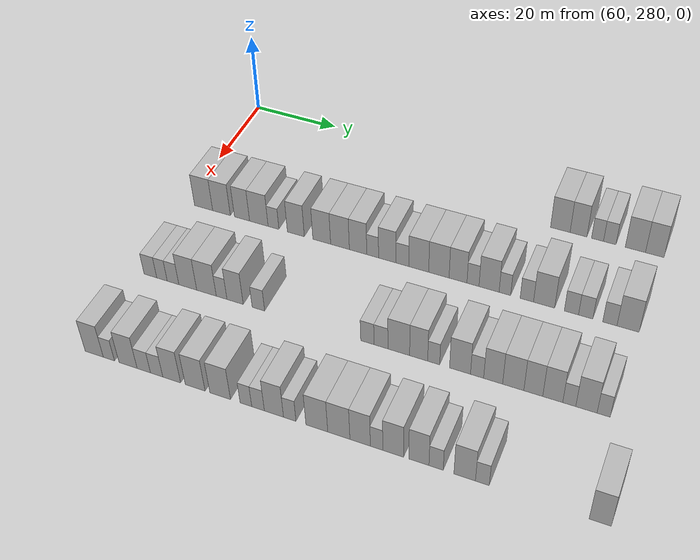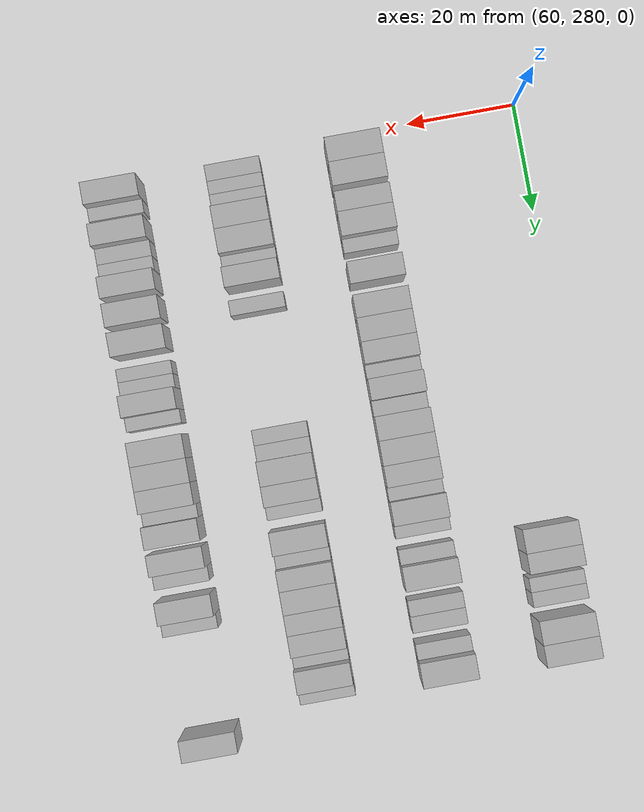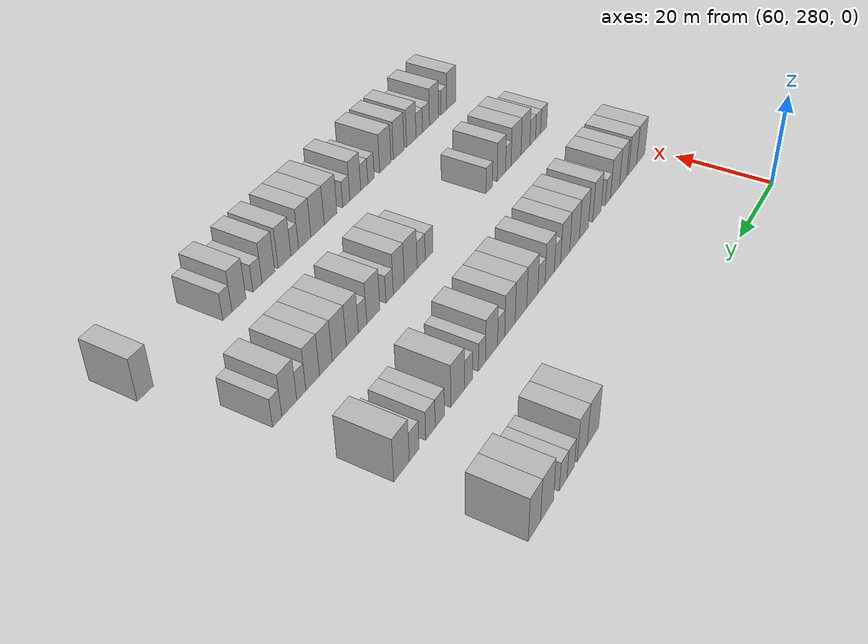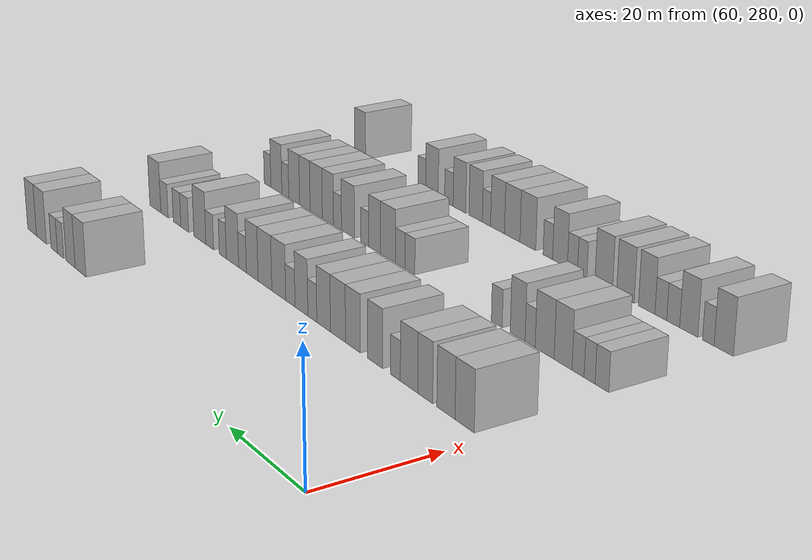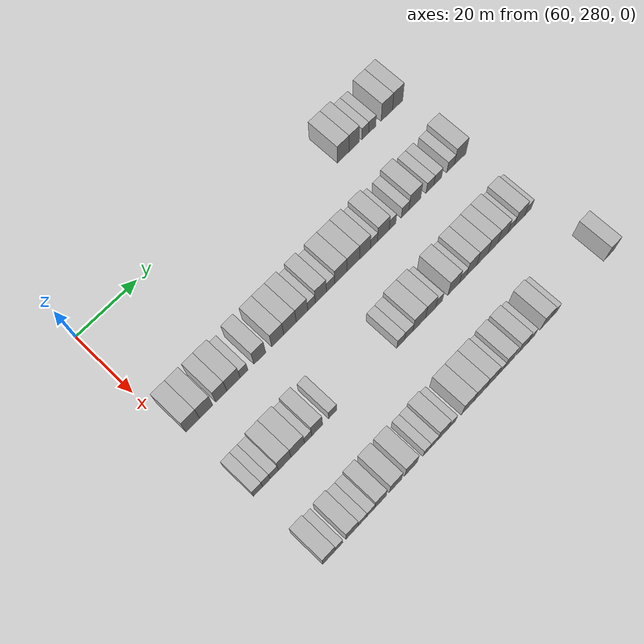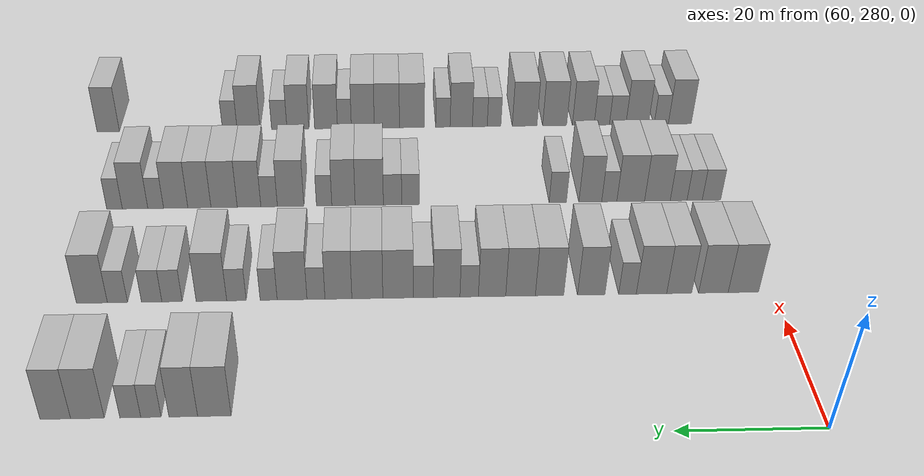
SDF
<sdf version="1.6">
 <world name="default">
  <model name="building_573">
   <static>1</static>
   <pose>69.0000 358.8042 0 0.000000 0.000000 0.000000</pose>
   <link name="link">
    <pose>0 0 4.50 0 0 0</pose>
    <collision name="collision"><geometry><box><size>10.0000 4.3174 9.0000</size></box></geometry></collision>
    <visual name="visual">
     <cast_shadows>0</cast_shadows>
     <geometry><box><size>10.0000 4.3174 9.0000</size></box></geometry>
     <material>
      <script>
       <uri>model://HANNAS_wall/materials/scripts</uri>
       <uri>model://HANNAS_wall/materials/textures</uri>
       <name>vrc/HANNAS_wall</name>
      </script>
     </material>
    </visual>
   </link>
  </model>
  <model name="building_574">
   <static>1</static>
   <pose>69.0000 362.8126 0 0.000000 0.000000 0.000000</pose>
   <link name="link">
    <pose>0 0 4.50 0 0 0</pose>
    <collision name="collision"><geometry><box><size>10.0000 3.6994 9.0000</size></box></geometry></collision>
    <visual name="visual">
     <cast_shadows>0</cast_shadows>
     <geometry><box><size>10.0000 3.6994 9.0000</size></box></geometry>
     <material>
      <script>
       <uri>model://HANNAS_wall/materials/scripts</uri>
       <uri>model://HANNAS_wall/materials/textures</uri>
       <name>vrc/HANNAS_wall</name>
      </script>
     </material>
    </visual>
   </link>
  </model>
  <model name="building_575">
   <static>1</static>
   <pose>69.0000 366.9683 0 0.000000 0.000000 0.000000</pose>
   <link name="link">
    <pose>0 0 3.00 0 0 0</pose>
    <collision name="collision"><geometry><box><size>10.0000 2.6120 6.0000</size></box></geometry></collision>
    <visual name="visual">
     <cast_shadows>0</cast_shadows>
     <geometry><box><size>10.0000 2.6120 6.0000</size></box></geometry>
     <material>
      <script>
       <uri>model://HANNAS_wall/materials/scripts</uri>
       <uri>model://HANNAS_wall/materials/textures</uri>
       <name>vrc/HANNAS_wall</name>
      </script>
     </material>
    </visual>
   </link>
  </model>
  <model name="building_576">
   <static>1</static>
   <pose>69.0000 369.6193 0 0.000000 0.000000 0.000000</pose>
   <link name="link">
    <pose>0 0 3.00 0 0 0</pose>
    <collision name="collision"><geometry><box><size>10.0000 2.6900 6.0000</size></box></geometry></collision>
    <visual name="visual">
     <cast_shadows>0</cast_shadows>
     <geometry><box><size>10.0000 2.6900 6.0000</size></box></geometry>
     <material>
      <script>
       <uri>model://HANNAS_wall/materials/scripts</uri>
       <uri>model://HANNAS_wall/materials/textures</uri>
       <name>vrc/HANNAS_wall</name>
      </script>
     </material>
    </visual>
   </link>
  </model>
  <model name="building_577">
   <static>1</static>
   <pose>69.0000 375.1210 0 0.000000 0.000000 0.000000</pose>
   <link name="link">
    <pose>0 0 4.50 0 0 0</pose>
    <collision name="collision"><geometry><box><size>10.0000 4.3135 9.0000</size></box></geometry></collision>
    <visual name="visual">
     <cast_shadows>0</cast_shadows>
     <geometry><box><size>10.0000 4.3135 9.0000</size></box></geometry>
     <material>
      <script>
       <uri>model://HANNAS_wall/materials/scripts</uri>
       <uri>model://HANNAS_wall/materials/textures</uri>
       <name>vrc/HANNAS_wall</name>
      </script>
     </material>
    </visual>
   </link>
  </model>
  <model name="building_578">
   <static>1</static>
   <pose>69.0000 379.2402 0 0.000000 0.000000 0.000000</pose>
   <link name="link">
    <pose>0 0 4.50 0 0 0</pose>
    <collision name="collision"><geometry><box><size>10.0000 3.9248 9.0000</size></box></geometry></collision>
    <visual name="visual">
     <cast_shadows>0</cast_shadows>
     <geometry><box><size>10.0000 3.9248 9.0000</size></box></geometry>
     <material>
      <script>
       <uri>model://HANNAS_wall/materials/scripts</uri>
       <uri>model://HANNAS_wall/materials/textures</uri>
       <name>vrc/HANNAS_wall</name>
      </script>
     </material>
    </visual>
   </link>
  </model>
  <model name="building_741">
   <static>1</static>
   <pose>91.0000 284.4511 0 0.000000 0.000000 0.000000</pose>
   <link name="link">
    <pose>0 0 4.50 0 0 0</pose>
    <collision name="collision"><geometry><box><size>10.0000 4.4527 9.0000</size></box></geometry></collision>
    <visual name="visual">
     <cast_shadows>0</cast_shadows>
     <geometry><box><size>10.0000 4.4527 9.0000</size></box></geometry>
     <material>
      <script>
       <uri>model://HANNAS_wall/materials/scripts</uri>
       <uri>model://HANNAS_wall/materials/textures</uri>
       <name>vrc/HANNAS_wall</name>
      </script>
     </material>
    </visual>
   </link>
  </model>
  <model name="building_742">
   <static>1</static>
   <pose>91.0000 288.8378 0 0.000000 0.000000 0.000000</pose>
   <link name="link">
    <pose>0 0 4.50 0 0 0</pose>
    <collision name="collision"><geometry><box><size>10.0000 4.3207 9.0000</size></box></geometry></collision>
    <visual name="visual">
     <cast_shadows>0</cast_shadows>
     <geometry><box><size>10.0000 4.3207 9.0000</size></box></geometry>
     <material>
      <script>
       <uri>model://HANNAS_wall/materials/scripts</uri>
       <uri>model://HANNAS_wall/materials/textures</uri>
       <name>vrc/HANNAS_wall</name>
      </script>
     </material>
    </visual>
   </link>
  </model>
  <model name="building_743">
   <static>1</static>
   <pose>91.0000 293.8256 0 0.000000 0.000000 0.000000</pose>
   <link name="link">
    <pose>0 0 4.50 0 0 0</pose>
    <collision name="collision"><geometry><box><size>10.0000 3.6549 9.0000</size></box></geometry></collision>
    <visual name="visual">
     <cast_shadows>0</cast_shadows>
     <geometry><box><size>10.0000 3.6549 9.0000</size></box></geometry>
     <material>
      <script>
       <uri>model://HANNAS_wall/materials/scripts</uri>
       <uri>model://HANNAS_wall/materials/textures</uri>
       <name>vrc/HANNAS_wall</name>
      </script>
     </material>
    </visual>
   </link>
  </model>
  <model name="building_744">
   <static>1</static>
   <pose>91.0000 297.8695 0 0.000000 0.000000 0.000000</pose>
   <link name="link">
    <pose>0 0 4.50 0 0 0</pose>
    <collision name="collision"><geometry><box><size>10.0000 4.4329 9.0000</size></box></geometry></collision>
    <visual name="visual">
     <cast_shadows>0</cast_shadows>
     <geometry><box><size>10.0000 4.4329 9.0000</size></box></geometry>
     <material>
      <script>
       <uri>model://HANNAS_wall/materials/scripts</uri>
       <uri>model://HANNAS_wall/materials/textures</uri>
       <name>vrc/HANNAS_wall</name>
      </script>
     </material>
    </visual>
   </link>
  </model>
  <model name="building_745">
   <static>1</static>
   <pose>91.0000 301.3727 0 0.000000 0.000000 0.000000</pose>
   <link name="link">
    <pose>0 0 3.00 0 0 0</pose>
    <collision name="collision"><geometry><box><size>10.0000 2.5737 6.0000</size></box></geometry></collision>
    <visual name="visual">
     <cast_shadows>0</cast_shadows>
     <geometry><box><size>10.0000 2.5737 6.0000</size></box></geometry>
     <material>
      <script>
       <uri>model://HANNAS_wall/materials/scripts</uri>
       <uri>model://HANNAS_wall/materials/textures</uri>
       <name>vrc/HANNAS_wall</name>
      </script>
     </material>
    </visual>
   </link>
  </model>
  <model name="building_746">
   <static>1</static>
   <pose>91.0000 306.6546 0 0.000000 0.000000 0.000000</pose>
   <link name="link">
    <pose>0 0 4.50 0 0 0</pose>
    <collision name="collision"><geometry><box><size>10.0000 3.9901 9.0000</size></box></geometry></collision>
    <visual name="visual">
     <cast_shadows>0</cast_shadows>
     <geometry><box><size>10.0000 3.9901 9.0000</size></box></geometry>
     <material>
      <script>
       <uri>model://HANNAS_wall/materials/scripts</uri>
       <uri>model://HANNAS_wall/materials/textures</uri>
       <name>vrc/HANNAS_wall</name>
      </script>
     </material>
    </visual>
   </link>
  </model>
  <model name="building_747">
   <static>1</static>
   <pose>91.0000 312.7134 0 0.000000 0.000000 0.000000</pose>
   <link name="link">
    <pose>0 0 4.50 0 0 0</pose>
    <collision name="collision"><geometry><box><size>10.0000 4.1274 9.0000</size></box></geometry></collision>
    <visual name="visual">
     <cast_shadows>0</cast_shadows>
     <geometry><box><size>10.0000 4.1274 9.0000</size></box></geometry>
     <material>
      <script>
       <uri>model://HANNAS_wall/materials/scripts</uri>
       <uri>model://HANNAS_wall/materials/textures</uri>
       <name>vrc/HANNAS_wall</name>
      </script>
     </material>
    </visual>
   </link>
  </model>
  <model name="building_748">
   <static>1</static>
   <pose>91.0000 316.9293 0 0.000000 0.000000 0.000000</pose>
   <link name="link">
    <pose>0 0 4.50 0 0 0</pose>
    <collision name="collision"><geometry><box><size>10.0000 4.3045 9.0000</size></box></geometry></collision>
    <visual name="visual">
     <cast_shadows>0</cast_shadows>
     <geometry><box><size>10.0000 4.3045 9.0000</size></box></geometry>
     <material>
      <script>
       <uri>model://HANNAS_wall/materials/scripts</uri>
       <uri>model://HANNAS_wall/materials/textures</uri>
       <name>vrc/HANNAS_wall</name>
      </script>
     </material>
    </visual>
   </link>
  </model>
  <model name="building_749">
   <static>1</static>
   <pose>91.0000 321.0681 0 0.000000 0.000000 0.000000</pose>
   <link name="link">
    <pose>0 0 4.50 0 0 0</pose>
    <collision name="collision"><geometry><box><size>10.0000 3.9730 9.0000</size></box></geometry></collision>
    <visual name="visual">
     <cast_shadows>0</cast_shadows>
     <geometry><box><size>10.0000 3.9730 9.0000</size></box></geometry>
     <material>
      <script>
       <uri>model://HANNAS_wall/materials/scripts</uri>
       <uri>model://HANNAS_wall/materials/textures</uri>
       <name>vrc/HANNAS_wall</name>
      </script>
     </material>
    </visual>
   </link>
  </model>
  <model name="building_750">
   <static>1</static>
   <pose>91.0000 324.3874 0 0.000000 0.000000 0.000000</pose>
   <link name="link">
    <pose>0 0 3.00 0 0 0</pose>
    <collision name="collision"><geometry><box><size>10.0000 2.6656 6.0000</size></box></geometry></collision>
    <visual name="visual">
     <cast_shadows>0</cast_shadows>
     <geometry><box><size>10.0000 2.6656 6.0000</size></box></geometry>
     <material>
      <script>
       <uri>model://HANNAS_wall/materials/scripts</uri>
       <uri>model://HANNAS_wall/materials/textures</uri>
       <name>vrc/HANNAS_wall</name>
      </script>
     </material>
    </visual>
   </link>
  </model>
  <model name="building_751">
   <static>1</static>
   <pose>91.0000 327.6610 0 0.000000 0.000000 0.000000</pose>
   <link name="link">
    <pose>0 0 4.50 0 0 0</pose>
    <collision name="collision"><geometry><box><size>10.0000 3.8817 9.0000</size></box></geometry></collision>
    <visual name="visual">
     <cast_shadows>0</cast_shadows>
     <geometry><box><size>10.0000 3.8817 9.0000</size></box></geometry>
     <material>
      <script>
       <uri>model://HANNAS_wall/materials/scripts</uri>
       <uri>model://HANNAS_wall/materials/textures</uri>
       <name>vrc/HANNAS_wall</name>
      </script>
     </material>
    </visual>
   </link>
  </model>
  <model name="building_752">
   <static>1</static>
   <pose>91.0000 331.0491 0 0.000000 0.000000 0.000000</pose>
   <link name="link">
    <pose>0 0 3.00 0 0 0</pose>
    <collision name="collision"><geometry><box><size>10.0000 2.8944 6.0000</size></box></geometry></collision>
    <visual name="visual">
     <cast_shadows>0</cast_shadows>
     <geometry><box><size>10.0000 2.8944 6.0000</size></box></geometry>
     <material>
      <script>
       <uri>model://HANNAS_wall/materials/scripts</uri>
       <uri>model://HANNAS_wall/materials/textures</uri>
       <name>vrc/HANNAS_wall</name>
      </script>
     </material>
    </visual>
   </link>
  </model>
  <model name="building_753">
   <static>1</static>
   <pose>91.0000 334.6876 0 0.000000 0.000000 0.000000</pose>
   <link name="link">
    <pose>0 0 4.50 0 0 0</pose>
    <collision name="collision"><geometry><box><size>10.0000 4.3828 9.0000</size></box></geometry></collision>
    <visual name="visual">
     <cast_shadows>0</cast_shadows>
     <geometry><box><size>10.0000 4.3828 9.0000</size></box></geometry>
     <material>
      <script>
       <uri>model://HANNAS_wall/materials/scripts</uri>
       <uri>model://HANNAS_wall/materials/textures</uri>
       <name>vrc/HANNAS_wall</name>
      </script>
     </material>
    </visual>
   </link>
  </model>
  <model name="building_754">
   <static>1</static>
   <pose>91.0000 339.1137 0 0.000000 0.000000 0.000000</pose>
   <link name="link">
    <pose>0 0 4.50 0 0 0</pose>
    <collision name="collision"><geometry><box><size>10.0000 4.4694 9.0000</size></box></geometry></collision>
    <visual name="visual">
     <cast_shadows>0</cast_shadows>
     <geometry><box><size>10.0000 4.4694 9.0000</size></box></geometry>
     <material>
      <script>
       <uri>model://HANNAS_wall/materials/scripts</uri>
       <uri>model://HANNAS_wall/materials/textures</uri>
       <name>vrc/HANNAS_wall</name>
      </script>
     </material>
    </visual>
   </link>
  </model>
  <model name="building_755">
   <static>1</static>
   <pose>91.0000 343.2878 0 0.000000 0.000000 0.000000</pose>
   <link name="link">
    <pose>0 0 4.50 0 0 0</pose>
    <collision name="collision"><geometry><box><size>10.0000 3.8789 9.0000</size></box></geometry></collision>
    <visual name="visual">
     <cast_shadows>0</cast_shadows>
     <geometry><box><size>10.0000 3.8789 9.0000</size></box></geometry>
     <material>
      <script>
       <uri>model://HANNAS_wall/materials/scripts</uri>
       <uri>model://HANNAS_wall/materials/textures</uri>
       <name>vrc/HANNAS_wall</name>
      </script>
     </material>
    </visual>
   </link>
  </model>
  <model name="building_756">
   <static>1</static>
   <pose>91.0000 346.5237 0 0.000000 0.000000 0.000000</pose>
   <link name="link">
    <pose>0 0 3.00 0 0 0</pose>
    <collision name="collision"><geometry><box><size>10.0000 2.5928 6.0000</size></box></geometry></collision>
    <visual name="visual">
     <cast_shadows>0</cast_shadows>
     <geometry><box><size>10.0000 2.5928 6.0000</size></box></geometry>
     <material>
      <script>
       <uri>model://HANNAS_wall/materials/scripts</uri>
       <uri>model://HANNAS_wall/materials/textures</uri>
       <name>vrc/HANNAS_wall</name>
      </script>
     </material>
    </visual>
   </link>
  </model>
  <model name="building_757">
   <static>1</static>
   <pose>91.0000 349.9665 0 0.000000 0.000000 0.000000</pose>
   <link name="link">
    <pose>0 0 4.50 0 0 0</pose>
    <collision name="collision"><geometry><box><size>10.0000 4.2927 9.0000</size></box></geometry></collision>
    <visual name="visual">
     <cast_shadows>0</cast_shadows>
     <geometry><box><size>10.0000 4.2927 9.0000</size></box></geometry>
     <material>
      <script>
       <uri>model://HANNAS_wall/materials/scripts</uri>
       <uri>model://HANNAS_wall/materials/textures</uri>
       <name>vrc/HANNAS_wall</name>
      </script>
     </material>
    </visual>
   </link>
  </model>
  <model name="building_758">
   <static>1</static>
   <pose>91.0000 353.3417 0 0.000000 0.000000 0.000000</pose>
   <link name="link">
    <pose>0 0 3.00 0 0 0</pose>
    <collision name="collision"><geometry><box><size>10.0000 2.4577 6.0000</size></box></geometry></collision>
    <visual name="visual">
     <cast_shadows>0</cast_shadows>
     <geometry><box><size>10.0000 2.4577 6.0000</size></box></geometry>
     <material>
      <script>
       <uri>model://HANNAS_wall/materials/scripts</uri>
       <uri>model://HANNAS_wall/materials/textures</uri>
       <name>vrc/HANNAS_wall</name>
      </script>
     </material>
    </visual>
   </link>
  </model>
  <model name="building_759">
   <static>1</static>
   <pose>91.0000 357.9738 0 0.000000 0.000000 0.000000</pose>
   <link name="link">
    <pose>0 0 3.00 0 0 0</pose>
    <collision name="collision"><geometry><box><size>10.0000 2.8064 6.0000</size></box></geometry></collision>
    <visual name="visual">
     <cast_shadows>0</cast_shadows>
     <geometry><box><size>10.0000 2.8064 6.0000</size></box></geometry>
     <material>
      <script>
       <uri>model://HANNAS_wall/materials/scripts</uri>
       <uri>model://HANNAS_wall/materials/textures</uri>
       <name>vrc/HANNAS_wall</name>
      </script>
     </material>
    </visual>
   </link>
  </model>
  <model name="building_760">
   <static>1</static>
   <pose>91.0000 361.5753 0 0.000000 0.000000 0.000000</pose>
   <link name="link">
    <pose>0 0 4.50 0 0 0</pose>
    <collision name="collision"><geometry><box><size>10.0000 4.3966 9.0000</size></box></geometry></collision>
    <visual name="visual">
     <cast_shadows>0</cast_shadows>
     <geometry><box><size>10.0000 4.3966 9.0000</size></box></geometry>
     <material>
      <script>
       <uri>model://HANNAS_wall/materials/scripts</uri>
       <uri>model://HANNAS_wall/materials/textures</uri>
       <name>vrc/HANNAS_wall</name>
      </script>
     </material>
    </visual>
   </link>
  </model>
  <model name="building_761">
   <static>1</static>
   <pose>91.0000 367.2328 0 0.000000 0.000000 0.000000</pose>
   <link name="link">
    <pose>0 0 3.00 0 0 0</pose>
    <collision name="collision"><geometry><box><size>10.0000 2.9182 6.0000</size></box></geometry></collision>
    <visual name="visual">
     <cast_shadows>0</cast_shadows>
     <geometry><box><size>10.0000 2.9182 6.0000</size></box></geometry>
     <material>
      <script>
       <uri>model://HANNAS_wall/materials/scripts</uri>
       <uri>model://HANNAS_wall/materials/textures</uri>
       <name>vrc/HANNAS_wall</name>
      </script>
     </material>
    </visual>
   </link>
  </model>
  <model name="building_762">
   <static>1</static>
   <pose>91.0000 370.1538 0 0.000000 0.000000 0.000000</pose>
   <link name="link">
    <pose>0 0 3.00 0 0 0</pose>
    <collision name="collision"><geometry><box><size>10.0000 2.9238 6.0000</size></box></geometry></collision>
    <visual name="visual">
     <cast_shadows>0</cast_shadows>
     <geometry><box><size>10.0000 2.9238 6.0000</size></box></geometry>
     <material>
      <script>
       <uri>model://HANNAS_wall/materials/scripts</uri>
       <uri>model://HANNAS_wall/materials/textures</uri>
       <name>vrc/HANNAS_wall</name>
      </script>
     </material>
    </visual>
   </link>
  </model>
  <model name="building_763">
   <static>1</static>
   <pose>91.0000 375.0550 0 0.000000 0.000000 0.000000</pose>
   <link name="link">
    <pose>0 0 3.00 0 0 0</pose>
    <collision name="collision"><geometry><box><size>10.0000 2.8787 6.0000</size></box></geometry></collision>
    <visual name="visual">
     <cast_shadows>0</cast_shadows>
     <geometry><box><size>10.0000 2.8787 6.0000</size></box></geometry>
     <material>
      <script>
       <uri>model://HANNAS_wall/materials/scripts</uri>
       <uri>model://HANNAS_wall/materials/textures</uri>
       <name>vrc/HANNAS_wall</name>
      </script>
     </material>
    </visual>
   </link>
  </model>
  <model name="building_764">
   <static>1</static>
   <pose>91.0000 378.7158 0 0.000000 0.000000 0.000000</pose>
   <link name="link">
    <pose>0 0 4.50 0 0 0</pose>
    <collision name="collision"><geometry><box><size>10.0000 4.4428 9.0000</size></box></geometry></collision>
    <visual name="visual">
     <cast_shadows>0</cast_shadows>
     <geometry><box><size>10.0000 4.4428 9.0000</size></box></geometry>
     <material>
      <script>
       <uri>model://HANNAS_wall/materials/scripts</uri>
       <uri>model://HANNAS_wall/materials/textures</uri>
       <name>vrc/HANNAS_wall</name>
      </script>
     </material>
    </visual>
   </link>
  </model>
  <model name="building_916">
   <static>1</static>
   <pose>113.0000 283.9813 0 0.000000 0.000000 0.000000</pose>
   <link name="link">
    <pose>0 0 3.00 0 0 0</pose>
    <collision name="collision"><geometry><box><size>10.0000 2.9812 6.0000</size></box></geometry></collision>
    <visual name="visual">
     <cast_shadows>0</cast_shadows>
     <geometry><box><size>10.0000 2.9812 6.0000</size></box></geometry>
     <material>
      <script>
       <uri>model://HANNAS_wall/materials/scripts</uri>
       <uri>model://HANNAS_wall/materials/textures</uri>
       <name>vrc/HANNAS_wall</name>
      </script>
     </material>
    </visual>
   </link>
  </model>
  <model name="building_917">
   <static>1</static>
   <pose>113.0000 286.6968 0 0.000000 0.000000 0.000000</pose>
   <link name="link">
    <pose>0 0 3.00 0 0 0</pose>
    <collision name="collision"><geometry><box><size>10.0000 2.4499 6.0000</size></box></geometry></collision>
    <visual name="visual">
     <cast_shadows>0</cast_shadows>
     <geometry><box><size>10.0000 2.4499 6.0000</size></box></geometry>
     <material>
      <script>
       <uri>model://HANNAS_wall/materials/scripts</uri>
       <uri>model://HANNAS_wall/materials/textures</uri>
       <name>vrc/HANNAS_wall</name>
      </script>
     </material>
    </visual>
   </link>
  </model>
  <model name="building_918">
   <static>1</static>
   <pose>113.0000 289.2739 0 0.000000 0.000000 0.000000</pose>
   <link name="link">
    <pose>0 0 3.00 0 0 0</pose>
    <collision name="collision"><geometry><box><size>10.0000 2.7042 6.0000</size></box></geometry></collision>
    <visual name="visual">
     <cast_shadows>0</cast_shadows>
     <geometry><box><size>10.0000 2.7042 6.0000</size></box></geometry>
     <material>
      <script>
       <uri>model://HANNAS_wall/materials/scripts</uri>
       <uri>model://HANNAS_wall/materials/textures</uri>
       <name>vrc/HANNAS_wall</name>
      </script>
     </material>
    </visual>
   </link>
  </model>
  <model name="building_919">
   <static>1</static>
   <pose>113.0000 292.6913 0 0.000000 0.000000 0.000000</pose>
   <link name="link">
    <pose>0 0 4.50 0 0 0</pose>
    <collision name="collision"><geometry><box><size>10.0000 4.1307 9.0000</size></box></geometry></collision>
    <visual name="visual">
     <cast_shadows>0</cast_shadows>
     <geometry><box><size>10.0000 4.1307 9.0000</size></box></geometry>
     <material>
      <script>
       <uri>model://HANNAS_wall/materials/scripts</uri>
       <uri>model://HANNAS_wall/materials/textures</uri>
       <name>vrc/HANNAS_wall</name>
      </script>
     </material>
    </visual>
   </link>
  </model>
  <model name="building_920">
   <static>1</static>
   <pose>113.0000 296.9893 0 0.000000 0.000000 0.000000</pose>
   <link name="link">
    <pose>0 0 4.50 0 0 0</pose>
    <collision name="collision"><geometry><box><size>10.0000 4.4653 9.0000</size></box></geometry></collision>
    <visual name="visual">
     <cast_shadows>0</cast_shadows>
     <geometry><box><size>10.0000 4.4653 9.0000</size></box></geometry>
     <material>
      <script>
       <uri>model://HANNAS_wall/materials/scripts</uri>
       <uri>model://HANNAS_wall/materials/textures</uri>
       <name>vrc/HANNAS_wall</name>
      </script>
     </material>
    </visual>
   </link>
  </model>
  <model name="building_921">
   <static>1</static>
   <pose>113.0000 300.4396 0 0.000000 0.000000 0.000000</pose>
   <link name="link">
    <pose>0 0 3.00 0 0 0</pose>
    <collision name="collision"><geometry><box><size>10.0000 2.4354 6.0000</size></box></geometry></collision>
    <visual name="visual">
     <cast_shadows>0</cast_shadows>
     <geometry><box><size>10.0000 2.4354 6.0000</size></box></geometry>
     <material>
      <script>
       <uri>model://HANNAS_wall/materials/scripts</uri>
       <uri>model://HANNAS_wall/materials/textures</uri>
       <name>vrc/HANNAS_wall</name>
      </script>
     </material>
    </visual>
   </link>
  </model>
  <model name="building_922">
   <static>1</static>
   <pose>113.0000 303.4888 0 0.000000 0.000000 0.000000</pose>
   <link name="link">
    <pose>0 0 4.50 0 0 0</pose>
    <collision name="collision"><geometry><box><size>10.0000 3.6630 9.0000</size></box></geometry></collision>
    <visual name="visual">
     <cast_shadows>0</cast_shadows>
     <geometry><box><size>10.0000 3.6630 9.0000</size></box></geometry>
     <material>
      <script>
       <uri>model://HANNAS_wall/materials/scripts</uri>
       <uri>model://HANNAS_wall/materials/textures</uri>
       <name>vrc/HANNAS_wall</name>
      </script>
     </material>
    </visual>
   </link>
  </model>
  <model name="building_923">
   <static>1</static>
   <pose>113.0000 308.7069 0 0.000000 0.000000 0.000000</pose>
   <link name="link">
    <pose>0 0 3.00 0 0 0</pose>
    <collision name="collision"><geometry><box><size>10.0000 2.7732 6.0000</size></box></geometry></collision>
    <visual name="visual">
     <cast_shadows>0</cast_shadows>
     <geometry><box><size>10.0000 2.7732 6.0000</size></box></geometry>
     <material>
      <script>
       <uri>model://HANNAS_wall/materials/scripts</uri>
       <uri>model://HANNAS_wall/materials/textures</uri>
       <name>vrc/HANNAS_wall</name>
      </script>
     </material>
    </visual>
   </link>
  </model>
  <model name="building_924">
   <static>1</static>
   <pose>113.0000 332.3113 0 0.000000 0.000000 0.000000</pose>
   <link name="link">
    <pose>0 0 3.00 0 0 0</pose>
    <collision name="collision"><geometry><box><size>10.0000 2.8119 6.0000</size></box></geometry></collision>
    <visual name="visual">
     <cast_shadows>0</cast_shadows>
     <geometry><box><size>10.0000 2.8119 6.0000</size></box></geometry>
     <material>
      <script>
       <uri>model://HANNAS_wall/materials/scripts</uri>
       <uri>model://HANNAS_wall/materials/textures</uri>
       <name>vrc/HANNAS_wall</name>
      </script>
     </material>
    </visual>
   </link>
  </model>
  <model name="building_925">
   <static>1</static>
   <pose>113.0000 335.1675 0 0.000000 0.000000 0.000000</pose>
   <link name="link">
    <pose>0 0 3.00 0 0 0</pose>
    <collision name="collision"><geometry><box><size>10.0000 2.9006 6.0000</size></box></geometry></collision>
    <visual name="visual">
     <cast_shadows>0</cast_shadows>
     <geometry><box><size>10.0000 2.9006 6.0000</size></box></geometry>
     <material>
      <script>
       <uri>model://HANNAS_wall/materials/scripts</uri>
       <uri>model://HANNAS_wall/materials/textures</uri>
       <name>vrc/HANNAS_wall</name>
      </script>
     </material>
    </visual>
   </link>
  </model>
  <model name="building_926">
   <static>1</static>
   <pose>113.0000 338.8661 0 0.000000 0.000000 0.000000</pose>
   <link name="link">
    <pose>0 0 4.50 0 0 0</pose>
    <collision name="collision"><geometry><box><size>10.0000 4.4965 9.0000</size></box></geometry></collision>
    <visual name="visual">
     <cast_shadows>0</cast_shadows>
     <geometry><box><size>10.0000 4.4965 9.0000</size></box></geometry>
     <material>
      <script>
       <uri>model://HANNAS_wall/materials/scripts</uri>
       <uri>model://HANNAS_wall/materials/textures</uri>
       <name>vrc/HANNAS_wall</name>
      </script>
     </material>
    </visual>
   </link>
  </model>
  <model name="building_927">
   <static>1</static>
   <pose>113.0000 342.9676 0 0.000000 0.000000 0.000000</pose>
   <link name="link">
    <pose>0 0 4.50 0 0 0</pose>
    <collision name="collision"><geometry><box><size>10.0000 3.7065 9.0000</size></box></geometry></collision>
    <visual name="visual">
     <cast_shadows>0</cast_shadows>
     <geometry><box><size>10.0000 3.7065 9.0000</size></box></geometry>
     <material>
      <script>
       <uri>model://HANNAS_wall/materials/scripts</uri>
       <uri>model://HANNAS_wall/materials/textures</uri>
       <name>vrc/HANNAS_wall</name>
      </script>
     </material>
    </visual>
   </link>
  </model>
  <model name="building_928">
   <static>1</static>
   <pose>113.0000 346.0462 0 0.000000 0.000000 0.000000</pose>
   <link name="link">
    <pose>0 0 3.00 0 0 0</pose>
    <collision name="collision"><geometry><box><size>10.0000 2.4508 6.0000</size></box></geometry></collision>
    <visual name="visual">
     <cast_shadows>0</cast_shadows>
     <geometry><box><size>10.0000 2.4508 6.0000</size></box></geometry>
     <material>
      <script>
       <uri>model://HANNAS_wall/materials/scripts</uri>
       <uri>model://HANNAS_wall/materials/textures</uri>
       <name>vrc/HANNAS_wall</name>
      </script>
     </material>
    </visual>
   </link>
  </model>
  <model name="building_929">
   <static>1</static>
   <pose>113.0000 351.3806 0 0.000000 0.000000 0.000000</pose>
   <link name="link">
    <pose>0 0 4.50 0 0 0</pose>
    <collision name="collision"><geometry><box><size>10.0000 4.2179 9.0000</size></box></geometry></collision>
    <visual name="visual">
     <cast_shadows>0</cast_shadows>
     <geometry><box><size>10.0000 4.2179 9.0000</size></box></geometry>
     <material>
      <script>
       <uri>model://HANNAS_wall/materials/scripts</uri>
       <uri>model://HANNAS_wall/materials/textures</uri>
       <name>vrc/HANNAS_wall</name>
      </script>
     </material>
    </visual>
   </link>
  </model>
  <model name="building_930">
   <static>1</static>
   <pose>113.0000 354.8005 0 0.000000 0.000000 0.000000</pose>
   <link name="link">
    <pose>0 0 3.00 0 0 0</pose>
    <collision name="collision"><geometry><box><size>10.0000 2.6220 6.0000</size></box></geometry></collision>
    <visual name="visual">
     <cast_shadows>0</cast_shadows>
     <geometry><box><size>10.0000 2.6220 6.0000</size></box></geometry>
     <material>
      <script>
       <uri>model://HANNAS_wall/materials/scripts</uri>
       <uri>model://HANNAS_wall/materials/textures</uri>
       <name>vrc/HANNAS_wall</name>
      </script>
     </material>
    </visual>
   </link>
  </model>
  <model name="building_931">
   <static>1</static>
   <pose>113.0000 357.9880 0 0.000000 0.000000 0.000000</pose>
   <link name="link">
    <pose>0 0 4.50 0 0 0</pose>
    <collision name="collision"><geometry><box><size>10.0000 3.7530 9.0000</size></box></geometry></collision>
    <visual name="visual">
     <cast_shadows>0</cast_shadows>
     <geometry><box><size>10.0000 3.7530 9.0000</size></box></geometry>
     <material>
      <script>
       <uri>model://HANNAS_wall/materials/scripts</uri>
       <uri>model://HANNAS_wall/materials/textures</uri>
       <name>vrc/HANNAS_wall</name>
      </script>
     </material>
    </visual>
   </link>
  </model>
  <model name="building_932">
   <static>1</static>
   <pose>113.0000 361.9473 0 0.000000 0.000000 0.000000</pose>
   <link name="link">
    <pose>0 0 4.50 0 0 0</pose>
    <collision name="collision"><geometry><box><size>10.0000 4.1655 9.0000</size></box></geometry></collision>
    <visual name="visual">
     <cast_shadows>0</cast_shadows>
     <geometry><box><size>10.0000 4.1655 9.0000</size></box></geometry>
     <material>
      <script>
       <uri>model://HANNAS_wall/materials/scripts</uri>
       <uri>model://HANNAS_wall/materials/textures</uri>
       <name>vrc/HANNAS_wall</name>
      </script>
     </material>
    </visual>
   </link>
  </model>
  <model name="building_933">
   <static>1</static>
   <pose>113.0000 365.8662 0 0.000000 0.000000 0.000000</pose>
   <link name="link">
    <pose>0 0 4.50 0 0 0</pose>
    <collision name="collision"><geometry><box><size>10.0000 3.6724 9.0000</size></box></geometry></collision>
    <visual name="visual">
     <cast_shadows>0</cast_shadows>
     <geometry><box><size>10.0000 3.6724 9.0000</size></box></geometry>
     <material>
      <script>
       <uri>model://HANNAS_wall/materials/scripts</uri>
       <uri>model://HANNAS_wall/materials/textures</uri>
       <name>vrc/HANNAS_wall</name>
      </script>
     </material>
    </visual>
   </link>
  </model>
  <model name="building_934">
   <static>1</static>
   <pose>113.0000 369.6246 0 0.000000 0.000000 0.000000</pose>
   <link name="link">
    <pose>0 0 4.50 0 0 0</pose>
    <collision name="collision"><geometry><box><size>10.0000 3.8443 9.0000</size></box></geometry></collision>
    <visual name="visual">
     <cast_shadows>0</cast_shadows>
     <geometry><box><size>10.0000 3.8443 9.0000</size></box></geometry>
     <material>
      <script>
       <uri>model://HANNAS_wall/materials/scripts</uri>
       <uri>model://HANNAS_wall/materials/textures</uri>
       <name>vrc/HANNAS_wall</name>
      </script>
     </material>
    </visual>
   </link>
  </model>
  <model name="building_935">
   <static>1</static>
   <pose>113.0000 372.7944 0 0.000000 0.000000 0.000000</pose>
   <link name="link">
    <pose>0 0 3.00 0 0 0</pose>
    <collision name="collision"><geometry><box><size>10.0000 2.4953 6.0000</size></box></geometry></collision>
    <visual name="visual">
     <cast_shadows>0</cast_shadows>
     <geometry><box><size>10.0000 2.4953 6.0000</size></box></geometry>
     <material>
      <script>
       <uri>model://HANNAS_wall/materials/scripts</uri>
       <uri>model://HANNAS_wall/materials/textures</uri>
       <name>vrc/HANNAS_wall</name>
      </script>
     </material>
    </visual>
   </link>
  </model>
  <model name="building_936">
   <static>1</static>
   <pose>113.0000 376.0601 0 0.000000 0.000000 0.000000</pose>
   <link name="link">
    <pose>0 0 4.50 0 0 0</pose>
    <collision name="collision"><geometry><box><size>10.0000 4.0361 9.0000</size></box></geometry></collision>
    <visual name="visual">
     <cast_shadows>0</cast_shadows>
     <geometry><box><size>10.0000 4.0361 9.0000</size></box></geometry>
     <material>
      <script>
       <uri>model://HANNAS_wall/materials/scripts</uri>
       <uri>model://HANNAS_wall/materials/textures</uri>
       <name>vrc/HANNAS_wall</name>
      </script>
     </material>
    </visual>
   </link>
  </model>
  <model name="building_937">
   <static>1</static>
   <pose>113.0000 379.3105 0 0.000000 0.000000 0.000000</pose>
   <link name="link">
    <pose>0 0 3.00 0 0 0</pose>
    <collision name="collision"><geometry><box><size>10.0000 2.4647 6.0000</size></box></geometry></collision>
    <visual name="visual">
     <cast_shadows>0</cast_shadows>
     <geometry><box><size>10.0000 2.4647 6.0000</size></box></geometry>
     <material>
      <script>
       <uri>model://HANNAS_wall/materials/scripts</uri>
       <uri>model://HANNAS_wall/materials/textures</uri>
       <name>vrc/HANNAS_wall</name>
      </script>
     </material>
    </visual>
   </link>
  </model>
  <model name="building_1089">
   <static>1</static>
   <pose>135.0000 284.4314 0 0.000000 0.000000 0.000000</pose>
   <link name="link">
    <pose>0 0 4.50 0 0 0</pose>
    <collision name="collision"><geometry><box><size>10.0000 4.0426 9.0000</size></box></geometry></collision>
    <visual name="visual">
     <cast_shadows>0</cast_shadows>
     <geometry><box><size>10.0000 4.0426 9.0000</size></box></geometry>
     <material>
      <script>
       <uri>model://HANNAS_wall/materials/scripts</uri>
       <uri>model://HANNAS_wall/materials/textures</uri>
       <name>vrc/HANNAS_wall</name>
      </script>
     </material>
    </visual>
   </link>
  </model>
  <model name="building_1090">
   <static>1</static>
   <pose>135.0000 287.6973 0 0.000000 0.000000 0.000000</pose>
   <link name="link">
    <pose>0 0 3.00 0 0 0</pose>
    <collision name="collision"><geometry><box><size>10.0000 2.4892 6.0000</size></box></geometry></collision>
    <visual name="visual">
     <cast_shadows>0</cast_shadows>
     <geometry><box><size>10.0000 2.4892 6.0000</size></box></geometry>
     <material>
      <script>
       <uri>model://HANNAS_wall/materials/scripts</uri>
       <uri>model://HANNAS_wall/materials/textures</uri>
       <name>vrc/HANNAS_wall</name>
      </script>
     </material>
    </visual>
   </link>
  </model>
  <model name="building_1091">
   <static>1</static>
   <pose>135.0000 291.9324 0 0.000000 0.000000 0.000000</pose>
   <link name="link">
    <pose>0 0 4.50 0 0 0</pose>
    <collision name="collision"><geometry><box><size>10.0000 3.9808 9.0000</size></box></geometry></collision>
    <visual name="visual">
     <cast_shadows>0</cast_shadows>
     <geometry><box><size>10.0000 3.9808 9.0000</size></box></geometry>
     <material>
      <script>
       <uri>model://HANNAS_wall/materials/scripts</uri>
       <uri>model://HANNAS_wall/materials/textures</uri>
       <name>vrc/HANNAS_wall</name>
      </script>
     </material>
    </visual>
   </link>
  </model>
  <model name="building_1092">
   <static>1</static>
   <pose>135.0000 295.3766 0 0.000000 0.000000 0.000000</pose>
   <link name="link">
    <pose>0 0 3.00 0 0 0</pose>
    <collision name="collision"><geometry><box><size>10.0000 2.9076 6.0000</size></box></geometry></collision>
    <visual name="visual">
     <cast_shadows>0</cast_shadows>
     <geometry><box><size>10.0000 2.9076 6.0000</size></box></geometry>
     <material>
      <script>
       <uri>model://HANNAS_wall/materials/scripts</uri>
       <uri>model://HANNAS_wall/materials/textures</uri>
       <name>vrc/HANNAS_wall</name>
      </script>
     </material>
    </visual>
   </link>
  </model>
  <model name="building_1093">
   <static>1</static>
   <pose>135.0000 298.1701 0 0.000000 0.000000 0.000000</pose>
   <link name="link">
    <pose>0 0 3.00 0 0 0</pose>
    <collision name="collision"><geometry><box><size>10.0000 2.6793 6.0000</size></box></geometry></collision>
    <visual name="visual">
     <cast_shadows>0</cast_shadows>
     <geometry><box><size>10.0000 2.6793 6.0000</size></box></geometry>
     <material>
      <script>
       <uri>model://HANNAS_wall/materials/scripts</uri>
       <uri>model://HANNAS_wall/materials/textures</uri>
       <name>vrc/HANNAS_wall</name>
      </script>
     </material>
    </visual>
   </link>
  </model>
  <model name="building_1094">
   <static>1</static>
   <pose>135.0000 301.4249 0 0.000000 0.000000 0.000000</pose>
   <link name="link">
    <pose>0 0 4.50 0 0 0</pose>
    <collision name="collision"><geometry><box><size>10.0000 3.8303 9.0000</size></box></geometry></collision>
    <visual name="visual">
     <cast_shadows>0</cast_shadows>
     <geometry><box><size>10.0000 3.8303 9.0000</size></box></geometry>
     <material>
      <script>
       <uri>model://HANNAS_wall/materials/scripts</uri>
       <uri>model://HANNAS_wall/materials/textures</uri>
       <name>vrc/HANNAS_wall</name>
      </script>
     </material>
    </visual>
   </link>
  </model>
  <model name="building_1095">
   <static>1</static>
   <pose>135.0000 306.4437 0 0.000000 0.000000 0.000000</pose>
   <link name="link">
    <pose>0 0 4.50 0 0 0</pose>
    <collision name="collision"><geometry><box><size>10.0000 4.2073 9.0000</size></box></geometry></collision>
    <visual name="visual">
     <cast_shadows>0</cast_shadows>
     <geometry><box><size>10.0000 4.2073 9.0000</size></box></geometry>
     <material>
      <script>
       <uri>model://HANNAS_wall/materials/scripts</uri>
       <uri>model://HANNAS_wall/materials/textures</uri>
       <name>vrc/HANNAS_wall</name>
      </script>
     </material>
    </visual>
   </link>
  </model>
  <model name="building_1096">
   <static>1</static>
   <pose>135.0000 311.7119 0 0.000000 0.000000 0.000000</pose>
   <link name="link">
    <pose>0 0 4.50 0 0 0</pose>
    <collision name="collision"><geometry><box><size>10.0000 4.3292 9.0000</size></box></geometry></collision>
    <visual name="visual">
     <cast_shadows>0</cast_shadows>
     <geometry><box><size>10.0000 4.3292 9.0000</size></box></geometry>
     <material>
      <script>
       <uri>model://HANNAS_wall/materials/scripts</uri>
       <uri>model://HANNAS_wall/materials/textures</uri>
       <name>vrc/HANNAS_wall</name>
      </script>
     </material>
    </visual>
   </link>
  </model>
  <model name="building_1097">
   <static>1</static>
   <pose>135.0000 317.0784 0 0.000000 0.000000 0.000000</pose>
   <link name="link">
    <pose>0 0 3.00 0 0 0</pose>
    <collision name="collision"><geometry><box><size>10.0000 2.4036 6.0000</size></box></geometry></collision>
    <visual name="visual">
     <cast_shadows>0</cast_shadows>
     <geometry><box><size>10.0000 2.4036 6.0000</size></box></geometry>
     <material>
      <script>
       <uri>model://HANNAS_wall/materials/scripts</uri>
       <uri>model://HANNAS_wall/materials/textures</uri>
       <name>vrc/HANNAS_wall</name>
      </script>
     </material>
    </visual>
   </link>
  </model>
  <model name="building_1098">
   <static>1</static>
   <pose>135.0000 319.5785 0 0.000000 0.000000 0.000000</pose>
   <link name="link">
    <pose>0 0 3.00 0 0 0</pose>
    <collision name="collision"><geometry><box><size>10.0000 2.5966 6.0000</size></box></geometry></collision>
    <visual name="visual">
     <cast_shadows>0</cast_shadows>
     <geometry><box><size>10.0000 2.5966 6.0000</size></box></geometry>
     <material>
      <script>
       <uri>model://HANNAS_wall/materials/scripts</uri>
       <uri>model://HANNAS_wall/materials/textures</uri>
       <name>vrc/HANNAS_wall</name>
      </script>
     </material>
    </visual>
   </link>
  </model>
  <model name="building_1099">
   <static>1</static>
   <pose>135.0000 322.8244 0 0.000000 0.000000 0.000000</pose>
   <link name="link">
    <pose>0 0 4.50 0 0 0</pose>
    <collision name="collision"><geometry><box><size>10.0000 3.8952 9.0000</size></box></geometry></collision>
    <visual name="visual">
     <cast_shadows>0</cast_shadows>
     <geometry><box><size>10.0000 3.8952 9.0000</size></box></geometry>
     <material>
      <script>
       <uri>model://HANNAS_wall/materials/scripts</uri>
       <uri>model://HANNAS_wall/materials/textures</uri>
       <name>vrc/HANNAS_wall</name>
      </script>
     </material>
    </visual>
   </link>
  </model>
  <model name="building_1100">
   <static>1</static>
   <pose>135.0000 326.0321 0 0.000000 0.000000 0.000000</pose>
   <link name="link">
    <pose>0 0 3.00 0 0 0</pose>
    <collision name="collision"><geometry><box><size>10.0000 2.5201 6.0000</size></box></geometry></collision>
    <visual name="visual">
     <cast_shadows>0</cast_shadows>
     <geometry><box><size>10.0000 2.5201 6.0000</size></box></geometry>
     <material>
      <script>
       <uri>model://HANNAS_wall/materials/scripts</uri>
       <uri>model://HANNAS_wall/materials/textures</uri>
       <name>vrc/HANNAS_wall</name>
      </script>
     </material>
    </visual>
   </link>
  </model>
  <model name="building_1101">
   <static>1</static>
   <pose>135.0000 331.4675 0 0.000000 0.000000 0.000000</pose>
   <link name="link">
    <pose>0 0 4.50 0 0 0</pose>
    <collision name="collision"><geometry><box><size>10.0000 4.3506 9.0000</size></box></geometry></collision>
    <visual name="visual">
     <cast_shadows>0</cast_shadows>
     <geometry><box><size>10.0000 4.3506 9.0000</size></box></geometry>
     <material>
      <script>
       <uri>model://HANNAS_wall/materials/scripts</uri>
       <uri>model://HANNAS_wall/materials/textures</uri>
       <name>vrc/HANNAS_wall</name>
      </script>
     </material>
    </visual>
   </link>
  </model>
  <model name="building_1102">
   <static>1</static>
   <pose>135.0000 335.8329 0 0.000000 0.000000 0.000000</pose>
   <link name="link">
    <pose>0 0 4.50 0 0 0</pose>
    <collision name="collision"><geometry><box><size>10.0000 4.3801 9.0000</size></box></geometry></collision>
    <visual name="visual">
     <cast_shadows>0</cast_shadows>
     <geometry><box><size>10.0000 4.3801 9.0000</size></box></geometry>
     <material>
      <script>
       <uri>model://HANNAS_wall/materials/scripts</uri>
       <uri>model://HANNAS_wall/materials/textures</uri>
       <name>vrc/HANNAS_wall</name>
      </script>
     </material>
    </visual>
   </link>
  </model>
  <model name="building_1103">
   <static>1</static>
   <pose>135.0000 340.0160 0 0.000000 0.000000 0.000000</pose>
   <link name="link">
    <pose>0 0 4.50 0 0 0</pose>
    <collision name="collision"><geometry><box><size>10.0000 3.9860 9.0000</size></box></geometry></collision>
    <visual name="visual">
     <cast_shadows>0</cast_shadows>
     <geometry><box><size>10.0000 3.9860 9.0000</size></box></geometry>
     <material>
      <script>
       <uri>model://HANNAS_wall/materials/scripts</uri>
       <uri>model://HANNAS_wall/materials/textures</uri>
       <name>vrc/HANNAS_wall</name>
      </script>
     </material>
    </visual>
   </link>
  </model>
  <model name="building_1104">
   <static>1</static>
   <pose>135.0000 343.2165 0 0.000000 0.000000 0.000000</pose>
   <link name="link">
    <pose>0 0 3.00 0 0 0</pose>
    <collision name="collision"><geometry><box><size>10.0000 2.4150 6.0000</size></box></geometry></collision>
    <visual name="visual">
     <cast_shadows>0</cast_shadows>
     <geometry><box><size>10.0000 2.4150 6.0000</size></box></geometry>
     <material>
      <script>
       <uri>model://HANNAS_wall/materials/scripts</uri>
       <uri>model://HANNAS_wall/materials/textures</uri>
       <name>vrc/HANNAS_wall</name>
      </script>
     </material>
    </visual>
   </link>
  </model>
  <model name="building_1105">
   <static>1</static>
   <pose>135.0000 346.4138 0 0.000000 0.000000 0.000000</pose>
   <link name="link">
    <pose>0 0 4.50 0 0 0</pose>
    <collision name="collision"><geometry><box><size>10.0000 3.9797 9.0000</size></box></geometry></collision>
    <visual name="visual">
     <cast_shadows>0</cast_shadows>
     <geometry><box><size>10.0000 3.9797 9.0000</size></box></geometry>
     <material>
      <script>
       <uri>model://HANNAS_wall/materials/scripts</uri>
       <uri>model://HANNAS_wall/materials/textures</uri>
       <name>vrc/HANNAS_wall</name>
      </script>
     </material>
    </visual>
   </link>
  </model>
  <model name="building_1106">
   <static>1</static>
   <pose>135.0000 351.3151 0 0.000000 0.000000 0.000000</pose>
   <link name="link">
    <pose>0 0 4.50 0 0 0</pose>
    <collision name="collision"><geometry><box><size>10.0000 3.8228 9.0000</size></box></geometry></collision>
    <visual name="visual">
     <cast_shadows>0</cast_shadows>
     <geometry><box><size>10.0000 3.8228 9.0000</size></box></geometry>
     <material>
      <script>
       <uri>model://HANNAS_wall/materials/scripts</uri>
       <uri>model://HANNAS_wall/materials/textures</uri>
       <name>vrc/HANNAS_wall</name>
      </script>
     </material>
    </visual>
   </link>
  </model>
  <model name="building_1107">
   <static>1</static>
   <pose>135.0000 354.5637 0 0.000000 0.000000 0.000000</pose>
   <link name="link">
    <pose>0 0 3.00 0 0 0</pose>
    <collision name="collision"><geometry><box><size>10.0000 2.6744 6.0000</size></box></geometry></collision>
    <visual name="visual">
     <cast_shadows>0</cast_shadows>
     <geometry><box><size>10.0000 2.6744 6.0000</size></box></geometry>
     <material>
      <script>
       <uri>model://HANNAS_wall/materials/scripts</uri>
       <uri>model://HANNAS_wall/materials/textures</uri>
       <name>vrc/HANNAS_wall</name>
      </script>
     </material>
    </visual>
   </link>
  </model>
  <model name="building_1108">
   <static>1</static>
   <pose>135.0000 359.8932 0 0.000000 0.000000 0.000000</pose>
   <link name="link">
    <pose>0 0 4.50 0 0 0</pose>
    <collision name="collision"><geometry><box><size>10.0000 3.9846 9.0000</size></box></geometry></collision>
    <visual name="visual">
     <cast_shadows>0</cast_shadows>
     <geometry><box><size>10.0000 3.9846 9.0000</size></box></geometry>
     <material>
      <script>
       <uri>model://HANNAS_wall/materials/scripts</uri>
       <uri>model://HANNAS_wall/materials/textures</uri>
       <name>vrc/HANNAS_wall</name>
      </script>
     </material>
    </visual>
   </link>
  </model>
  <model name="building_1109">
   <static>1</static>
   <pose>135.0000 363.1552 0 0.000000 0.000000 0.000000</pose>
   <link name="link">
    <pose>0 0 3.00 0 0 0</pose>
    <collision name="collision"><geometry><box><size>10.0000 2.5394 6.0000</size></box></geometry></collision>
    <visual name="visual">
     <cast_shadows>0</cast_shadows>
     <geometry><box><size>10.0000 2.5394 6.0000</size></box></geometry>
     <material>
      <script>
       <uri>model://HANNAS_wall/materials/scripts</uri>
       <uri>model://HANNAS_wall/materials/textures</uri>
       <name>vrc/HANNAS_wall</name>
      </script>
     </material>
    </visual>
   </link>
  </model>
  <model name="building_1110">
   <static>1</static>
   <pose>135.0000 384.2280 0 0.000000 0.000000 0.000000</pose>
   <link name="link">
    <pose>0 0 4.50 0 0 0</pose>
    <collision name="collision"><geometry><box><size>10.0000 3.8687 9.0000</size></box></geometry></collision>
    <visual name="visual">
     <cast_shadows>0</cast_shadows>
     <geometry><box><size>10.0000 3.8687 9.0000</size></box></geometry>
     <material>
      <script>
       <uri>model://HANNAS_wall/materials/scripts</uri>
       <uri>model://HANNAS_wall/materials/textures</uri>
       <name>vrc/HANNAS_wall</name>
      </script>
     </material>
    </visual>
   </link>
  </model>
 </world>
</sdf>
